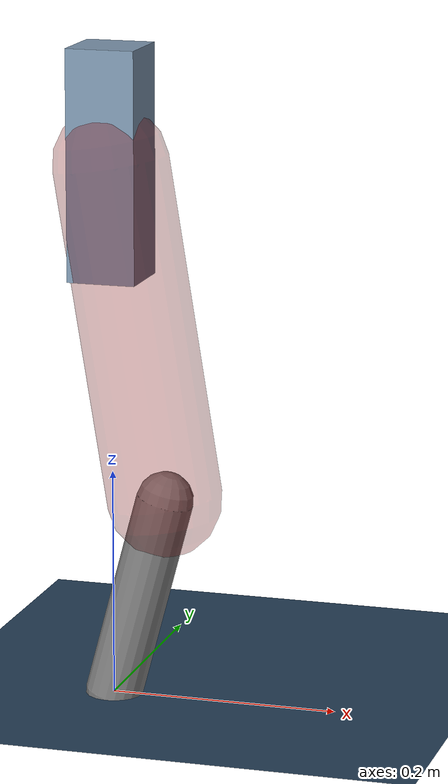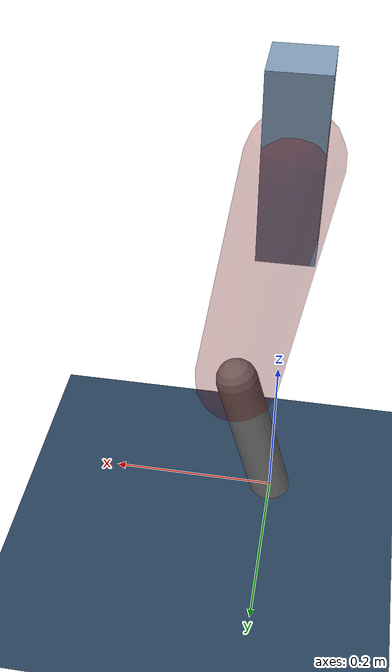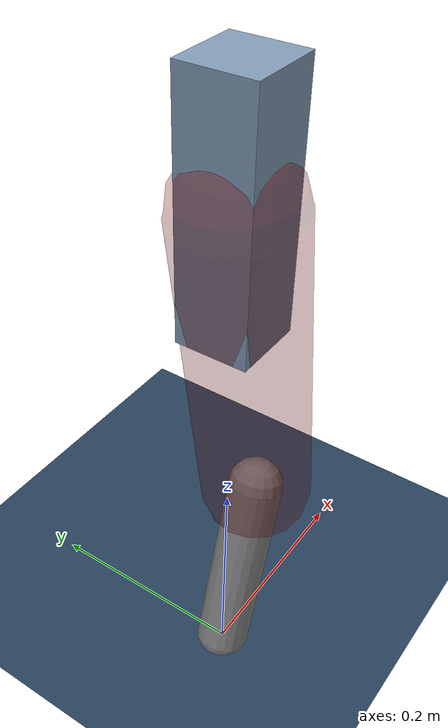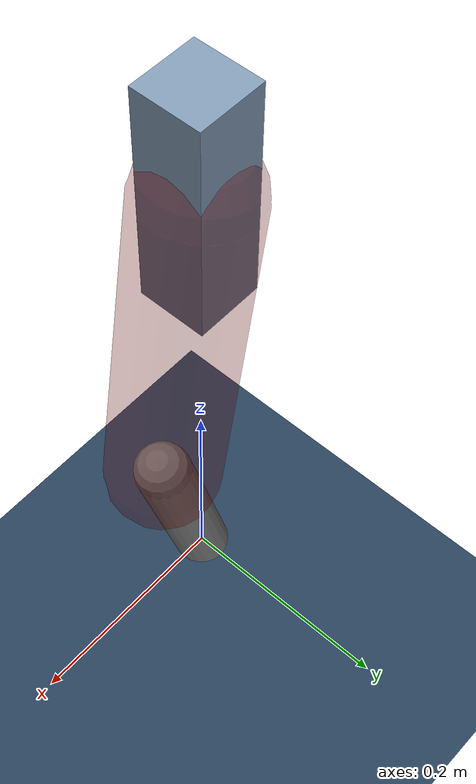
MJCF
<mujoco model="Hopper2D">
	<compiler inertiafromgeom="true" angle="radian" />
	<option timestep="0.001" integrator="implicit" cone="elliptic" solver="Newton" tolerance="1e-10" />

	<default>
		<geom contype="1" conaffinity="1" condim="3" friction="2 0.005 0.0001" solref="0.005 1" />
		<joint limited="true" damping="0.1" />
	</default>

	<asset>
		<texture name="skybox" type="skybox" builtin="gradient" rgb1=".4 .6 .8" rgb2="0 0 0" width="800" height="800" />
		<texture name="grid" type="2d" builtin="checker" rgb1=".1 .2 .3" rgb2=".2 .3 .4" width="300" height="300" mark="edge" markrgb=".2 .3 .4" />
		<material name="ground" texture="grid" texrepeat="1 1" texuniform="true" reflectance="0.1" />
		<material name="leg" rgba="0.5 0.6 0.7 1" />
	</asset>

	<worldbody>

		<geom name="floor" type="plane" size="5 5 0.25" material="ground" />

		<light directional="false" diffuse="0.8 0.8 0.8" specular="0.3 0.3 0.3" pos="0 0 2" dir="0 0 -1" />
		<light mode="targetbodycom" target="base" directional="false" diffuse="0.8 0.8 0.8" specular="0.3 0.3 0.3" pos="0 0 2" dir="0 0 -1" />

		<camera name="fixed" pos="0 -2 1" xyaxes="1 0 0 0 0 1" />
		<camera name="tracking" mode="trackcom" pos="0 -3 1" />

		<body name="root" pos="0 0 0.47138795049276355">
			<joint name="slide_x" type="slide" axis="1 0 0" range="-100 100" />
			<joint name="slide_z" type="slide" axis="0 0 1" range="0 10" />

			<body name="base" pos="0 0 0">
				<geom name="torso" type="box" size="0.03 0.03 0.1" mass="2.179" material="leg" />

				<body name="link1" pos="0 0 0" euler="0 1.4106532083157397 0">
					<joint type="hinge" axis="0 -1 0" pos="0 0 0" name="hinge1" limited="true" range="-3.14 3.14" stiffness="0" damping="0.1" />
					<geom name="thigh" type="capsule" fromto="0 0 0 0.29715451591416703 0 0" size="0.05" rgba="0.5 0 0 0.3" mass="0.9810171929682511" />

					<body name="link2" pos="0.29715451591416703 0 0" euler="0 0.42026262149698196 0">
						<joint type="hinge" axis="0 -1 0" pos="0 0 0" name="hinge2" limited="true" range="-3.14 3.14" stiffness="0" damping="0.1" />
						<geom name="shank" type="capsule" fromto="0 0 0 0.18423343457859653 0 0" size="0.025" mass="0.38751009112073687" />

					</body>
				</body>
			</body>
		</body>
	</worldbody>

	<actuator>
		<motor name="torque1" joint="hinge1" ctrlrange="-65.77926899297742 65.77926899297742" ctrllimited="true" gear="1" />
		<motor name="torque2" joint="hinge2" ctrlrange="-28.810188196004944 28.810188196004944" ctrllimited="true" gear="1" />
	</actuator>
</mujoco>
